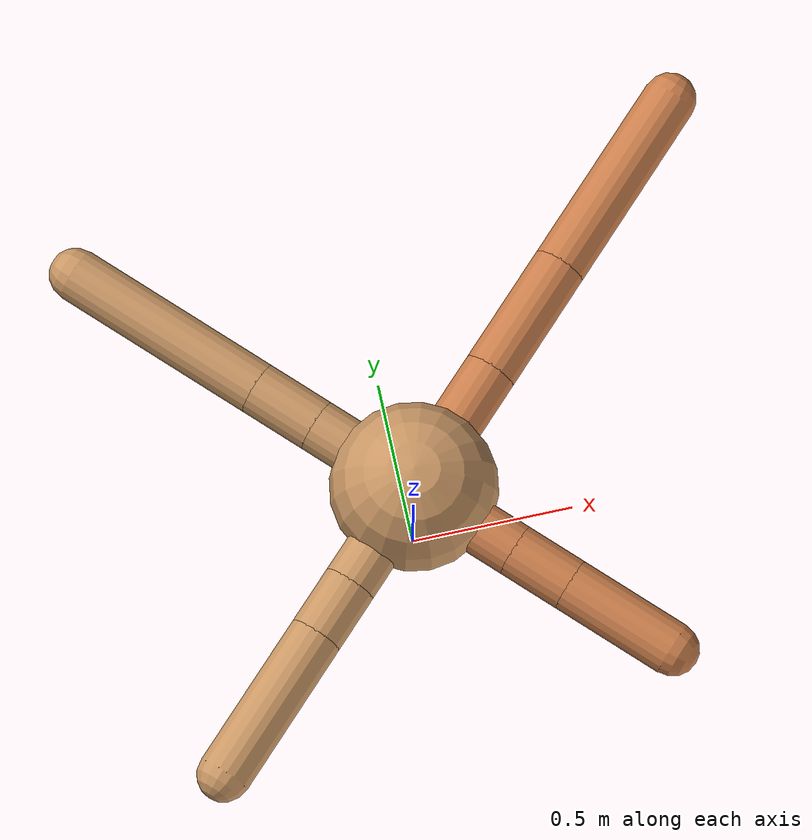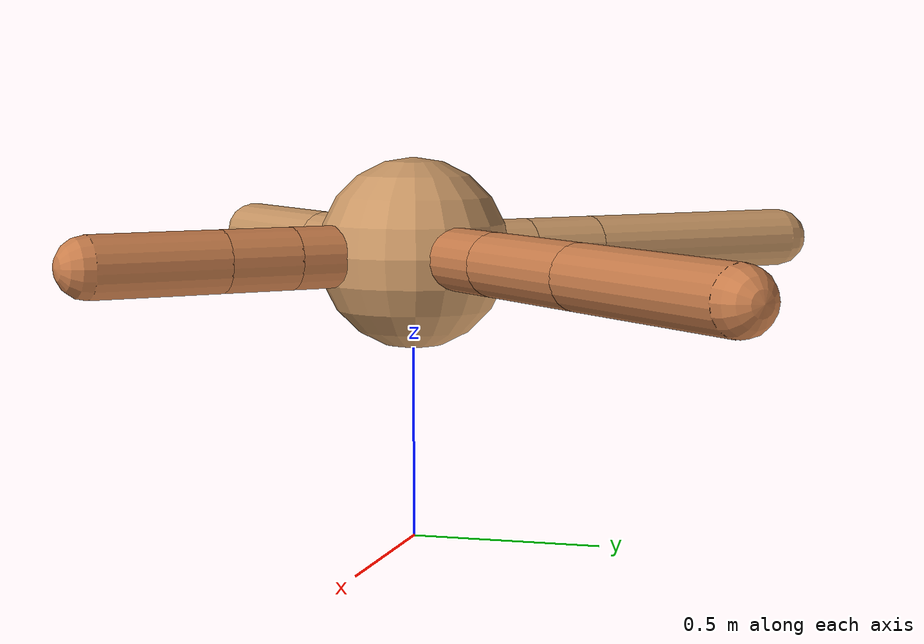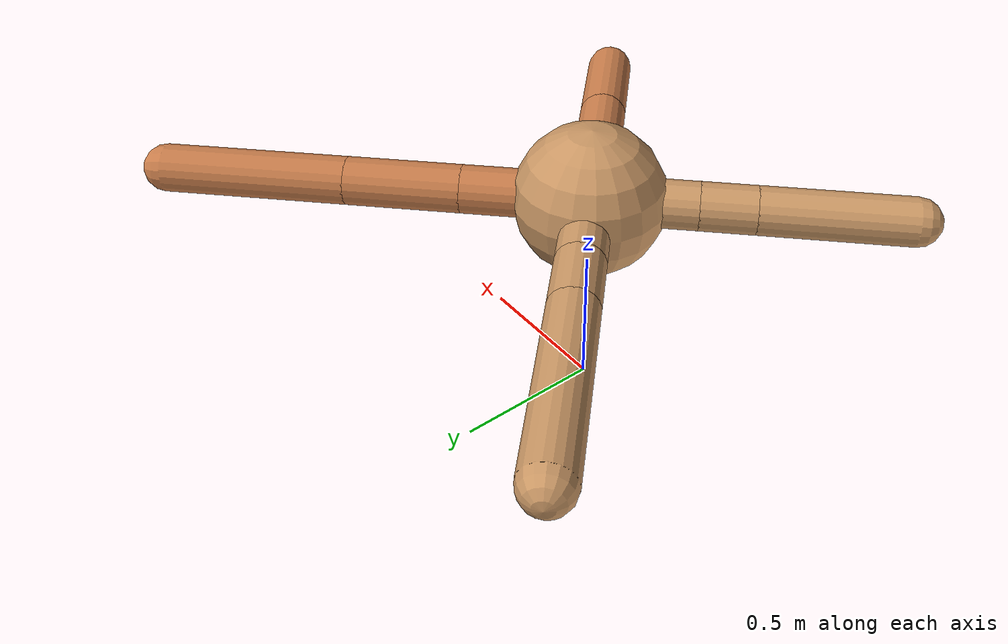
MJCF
<mujoco model="ant">
  <compiler angle="degree" coordinate="local" inertiafromgeom="true" />
  <option integrator="RK4" timestep="0.01" />
  <custom>
    <numeric data="0.0 0.0 0.55 1.0 0.0 0.0 0.0 0.0 1.0 0.0 -1.0 0.0 -1.0 0.0 1.0" name="init_qpos" />
  </custom>
  <default>
    <joint armature="1" damping="1" limited="true" />
    <geom conaffinity="0" condim="3" density="5.0" friction="1.5 0.1 0.1" margin="0.01" rgba="0.8 0.6 0.4 1" />
  </default>
  <worldbody>
    <body name="torso" pos="0 0 0.75">
      <geom name="torso_geom" pos="0 0 0" size="0.25" type="sphere" />

      <body name="front_left_leg" pos="0 0 0">
        <geom fromto="0.0 0.0 0.0 0.29357290885076287 0.29357290885076287 0.0" name="aux_1_geom" size="0.08" type="capsule" rgba=".8 .5 .3 1" />
        <body name="aux_1" pos="0.29357290885076287 0.29357290885076287 0.0">
          <joint axis="0 0 1" name="hip_1" pos="0.0 0.0 0.0" range="-40 40" type="hinge" />
          <geom fromto="0.0 0.0 0.0 0.26854142251469465 0.26854142251469465 0.0" name="left_leg_geom" size="0.08" type="capsule" rgba=".8 .5 .3 1" />
          <body pos="0.26854142251469465 0.26854142251469465 0.0" name="front_left_foot">
            <joint axis="-1 1 0" name="ankle_1" pos="0.0 0.0 0.0" range="30 100" type="hinge" />
            <geom fromto="0.0 0.0 0.0 0.4331318253275238 0.4331318253275238 0.0" name="left_ankle_geom" size="0.08" type="capsule" rgba=".8 .5 .3 1" />
          </body>
        </body>
      </body>
      <body name="front_right_leg" pos="0 0 0">
        <geom fromto="0.0 0.0 0.0 -0.24006893522107375 0.24006893522107375 0.0" name="aux_2_geom" size="0.08" type="capsule" />
        <body name="aux_2" pos="-0.24006893522107375 0.24006893522107375 0.0">
          <joint axis="0 0 1" name="hip_2" pos="0.0 0.0 0.0" range="-40 40" type="hinge" />
          <geom fromto="0.0 0.0 0.0 -0.14723155332241505 0.14723155332241505 0.0" name="right_leg_geom" size="0.08" type="capsule" />
          <body pos="-0.14723155332241505 0.14723155332241505 0.0" name="front_right_foot">
            <joint axis="1 1 0" name="ankle_2" pos="0.0 0.0 0.0" range="-100 -30" type="hinge" />
            <geom fromto="0.0 0.0 0.0 -0.45184059017709927 0.45184059017709927 0.0" name="right_ankle_geom" size="0.08" type="capsule" />
          </body>
        </body>
      </body>
      <body name="left_back_leg" pos="0 0 0">
        <geom fromto="0.0 0.0 0.0 -0.24443084604606435 -0.24443084604606435 0.0" name="aux_3_geom" size="0.08" type="capsule" />
        <body name="aux_3" pos="-0.24443084604606435 -0.24443084604606435 0.0">
          <joint axis="0 0 1" name="hip_3" pos="0.0 0.0 0.0" range="-40 40" type="hinge" />
          <geom fromto="0.0 0.0 0.0 -0.12782812020722575 -0.12782812020722575 0.0" name="back_leg_geom" size="0.08" type="capsule" />
          <body pos="-0.12782812020722575 -0.12782812020722575 0.0" name="left_back_foot">
            <joint axis="-1 1 0" name="ankle_3" pos="0.0 0.0 0.0" range="-100 -30" type="hinge" />
            <geom fromto="0.0 0.0 0.0 -0.3465407823352548 -0.3465407823352548 0.0" name="third_ankle_geom" size="0.08" type="capsule" />
          </body>
        </body>
      </body>
      <body name="right_back_leg" pos="0 0 0">
        <geom fromto="0.0 0.0 0.0 0.24821484492171 -0.24821484492171 0.0" name="aux_4_geom" size="0.08" type="capsule" rgba=".8 .5 .3 1" />
        <body name="aux_4" pos="0.24821484492171 -0.24821484492171 0.0">
          <joint axis="0 0 1" name="hip_4" pos="0.0 0.0 0.0" range="-40 40" type="hinge" />
          <geom fromto="0.0 0.0 0.0 0.13477438443455733 -0.13477438443455733 0.0" name="rightback_leg_geom" size="0.08" type="capsule" rgba=".8 .5 .3 1" />
          <body pos="0.13477438443455733 -0.13477438443455733 0.0" name="right_back_foot">
            <joint axis="1 1 0" name="ankle_4" pos="0.0 0.0 0.0" range="30 100" type="hinge" />
            <geom fromto="0.0 0.0 0.0 0.24867428961224644 -0.24867428961224644 0.0" name="fourth_ankle_geom" size="0.08" type="capsule" rgba=".8 .5 .3 1" />
          </body>
        </body>
      </body>
    </body>
  </worldbody>
  <actuator>
    <motor ctrllimited="true" ctrlrange="-1.0 1.0" joint="hip_4" gear="150" />
    <motor ctrllimited="true" ctrlrange="-1.0 1.0" joint="ankle_4" gear="150" />
    <motor ctrllimited="true" ctrlrange="-1.0 1.0" joint="hip_1" gear="150" />
    <motor ctrllimited="true" ctrlrange="-1.0 1.0" joint="ankle_1" gear="150" />
    <motor ctrllimited="true" ctrlrange="-1.0 1.0" joint="hip_2" gear="150" />
    <motor ctrllimited="true" ctrlrange="-1.0 1.0" joint="ankle_2" gear="150" />
    <motor ctrllimited="true" ctrlrange="-1.0 1.0" joint="hip_3" gear="150" />
    <motor ctrllimited="true" ctrlrange="-1.0 1.0" joint="ankle_3" gear="150" />
  </actuator>
</mujoco>
